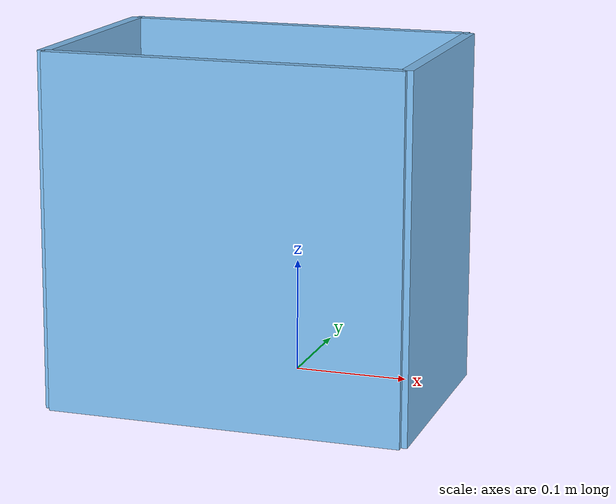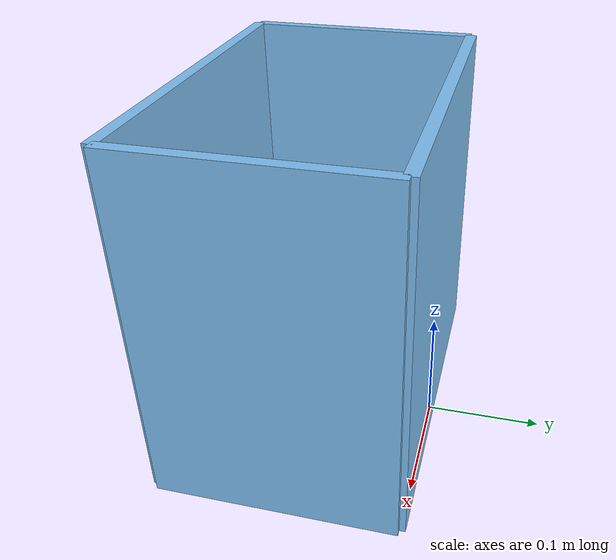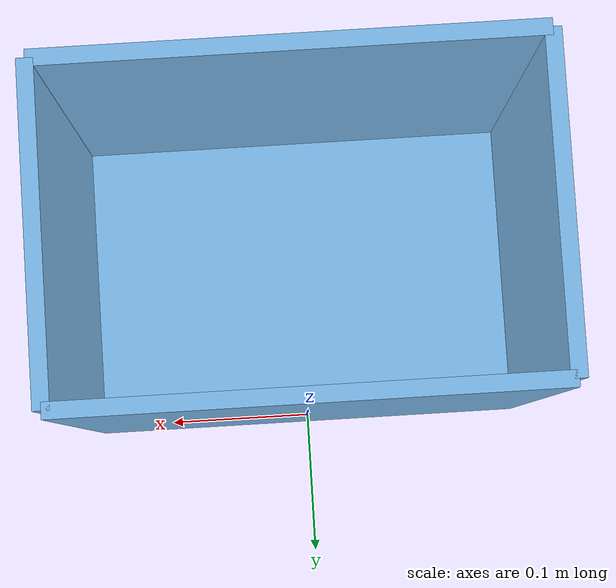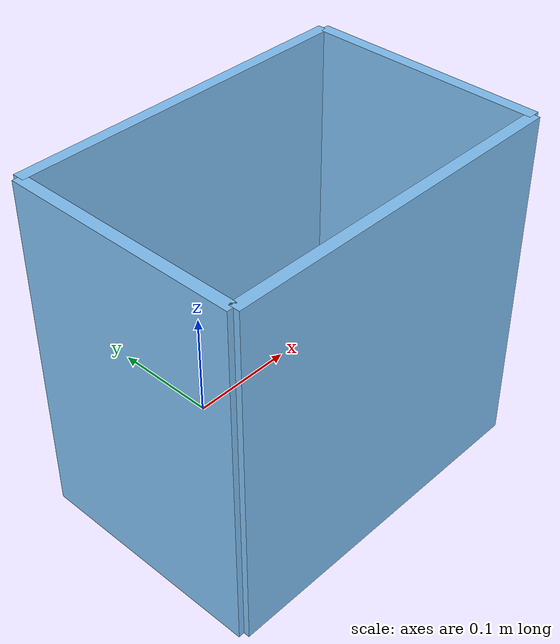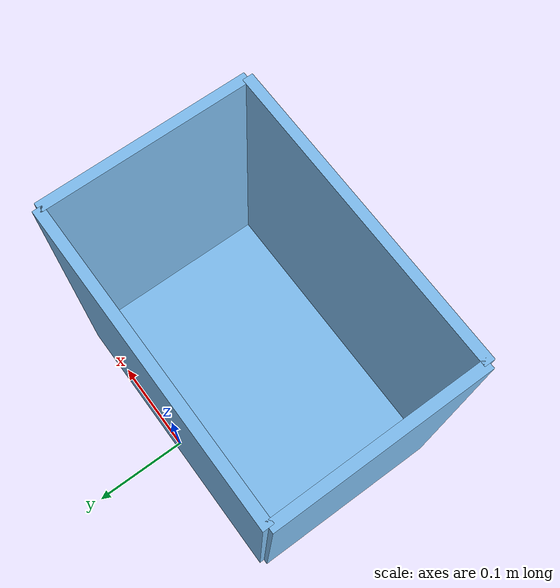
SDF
<?xml version="1.0" ?>
<sdf version="1.4">
  <model name="hackathon_box">
    <static>true</static>
    <link name="body">
      <pose>0 -0.1 0.01 0 0 -1.57</pose>
      <gravity>true</gravity>
      <visual name="bottom">
	<pose>0 0 0.02 0 0 0</pose>
        <geometry>
	  <box>
	    <size>0.2 0.3 0.04</size>
          </box>
        </geometry>
        <material>
	  <script>
	    <uri>file://media/materials/scripts/gazebo.material</uri>
	    <name>Gazebo/SkyBlue</name>
	  </script>
        </material>
      </visual>
      <collision name="bottom-c">
	<pose>0 0 0.02 0 0 0</pose>
        <geometry>
	  <box>
	    <size>0.2 0.3 0.04</size>
          </box>
        </geometry>
      </collision>
      <visual name="left">
	<pose>-0.1 0 0.15 0 0 0</pose>
        <geometry>
	  <box>
	    <size>0.01 0.3 0.3</size>
          </box>
        </geometry>
        <material>
	  <script>
	    <uri>file://media/materials/scripts/gazebo.material</uri>
	    <name>Gazebo/SkyBlue</name>
	  </script>
        </material>
      </visual>
      <collision name="left-c">
	<pose>-0.1 0 0.14 0 0 0</pose>
        <geometry>
	  <box>
	    <size>0.01 0.3 0.3</size>
          </box>
        </geometry>
      </collision>
      <visual name="back">
	<pose>0 0.15 0.15 0 0 0</pose>
        <geometry>
	  <box>
	    <size>0.2 0.01 0.3</size>
          </box>
        </geometry>
        <material>
	  <script>
	    <uri>file://media/materials/scripts/gazebo.material</uri>
	    <name>Gazebo/SkyBlue</name>
	  </script>
        </material>
      </visual>
      <collision name="back-c">
	<pose>0 0.15 0.15 0 0 0</pose>
        <geometry>
	  <box>
	    <size>0.2 0.01 0.3</size>
          </box>
        </geometry>
      </collision>
      <visual name="right">
	<pose>0.1 0 0.15 0 0 0</pose>
        <geometry>
	  <box>
	    <size>0.01 0.3 0.3</size>
          </box>
        </geometry>
        <material>
	  <script>
	    <uri>file://media/materials/scripts/gazebo.material</uri>
	    <name>Gazebo/SkyBlue</name>
	  </script>
        </material>
      </visual>
      <collision name="right-c">
	<pose>0.1 0 0.15 0 0 0</pose>
        <geometry>
	  <box>
	    <size>0.01 0.3 0.3</size>
          </box>
        </geometry>
      </collision>
      <visual name="front">
	<pose>0 -0.15 0.15 0 0 0</pose>
        <geometry>
	  <box>
	    <size>0.2 0.01 0.3</size>
          </box>
        </geometry>
        <material>
	  <script>
	    <uri>file://media/materials/scripts/gazebo.material</uri>
	    <name>Gazebo/SkyBlue</name>
	  </script>
        </material>
      </visual>
      <collision name="front-c">
	<pose>0 -0.15 0.15 0 0 0</pose>
        <geometry>
	  <box>
	    <size>0.2 0.01 0.3</size>
          </box>
        </geometry>
      </collision>
    </link>
  </model>
</sdf>
